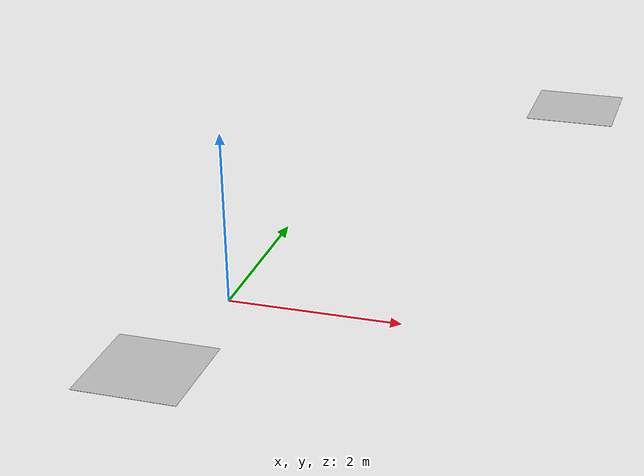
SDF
<?xml version="1.0"?>
<sdf version="1.6">
  <model name="new_baseAir">
    <static>true</static>
    <link name="baseAir_link">
      <visual name="visual_baseAir">
        <cast_shadows>true</cast_shadows>
        <geometry>
          <mesh>
            <uri>model://cbrBaseair/meshes/base_air.dae</uri>
          </mesh>
        </geometry>
        <material>
          <script>
            <uri>model://cbrBaseair/materials/scripts</uri>
            <uri>model://cbrBaseair/materials/textures</uri>
            <name>baseAir/color</name>
          </script>
        </material>
      </visual>
      <collision name="collision_baseAir">
        <geometry>
          <mesh>
            <uri>model://cbrBaseair/meshes/base_air.dae</uri>
          </mesh>
        </geometry>
      </collision>
    </link>
  </model>
</sdf>
